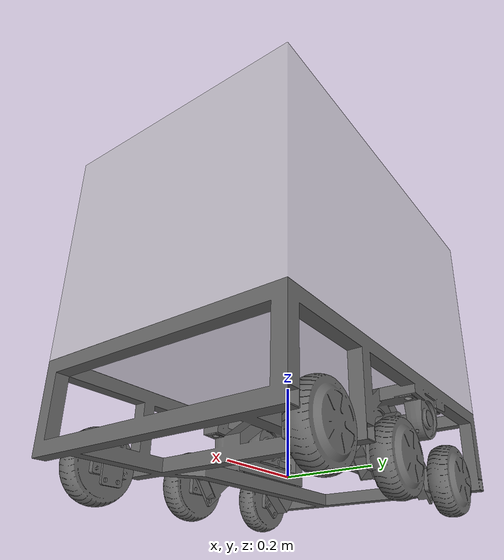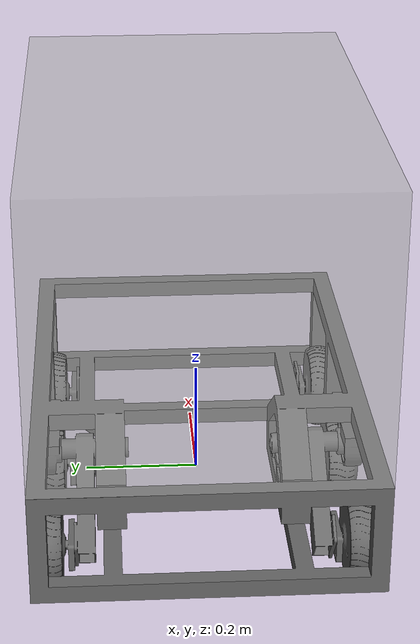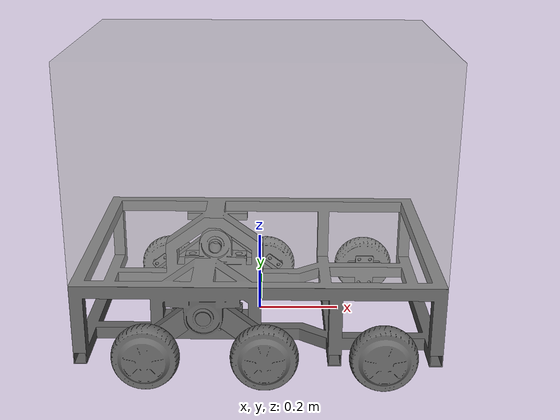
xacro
<?xml version="1.0"?>
<robot name="delivery_robot" xmlns:xacro="http://ros.org/wiki/xacro">

  <!-- Właściwości -->
  <xacro:property name="body_length" value="0.84"/>
  <xacro:property name="body_width" value="0.58"/>
  <xacro:property name="body_height" value="0.5"/>
  <xacro:property name="rocker_y_offset" value="0.185"/>
  <xacro:property name="rocker_z_offset" value="0.1126"/>
  <xacro:property name="wheel_radius" value="0.08255"/>
  <xacro:property name="wheel_width" value="0.05"/>
  <xacro:property name="wheel_gap" value="0.275"/>
  <xacro:property name="wheel_y_offset" value="0.035"/>
  <xacro:property name="wheel_z_offset" value="-0.1076"/>
  <xacro:property name="wheel_front_y_offset" value="${rocker_y_offset + wheel_y_offset}"/>
  <xacro:property name="wheel_front_z_offset" value="${rocker_z_offset + wheel_z_offset}"/>
  <xacro:property name="pkg_path" value="$(find boxygo)"/>

  <!-- Materiały -->
  <material name="black"><color rgba="0 0 0 1"/></material>
  <material name="white"><color rgba="0.7 0.7 0.7 0.5"/></material>
  <material name="grey"><color rgba="0.4 0.4 0.4 1"/></material>

  <!-- Rama -->
  <link name="base_link">
    <visual>
      <geometry>
        <mesh filename="file://${pkg_path}/meshes/frame.stl" scale="0.001 0.001 0.001"/>
      </geometry>
      <material name="grey"/>
    </visual>
    <collision>
      <geometry>
        <mesh filename="file://${pkg_path}/meshes/frame.stl" scale="0.001 0.001 0.001"/>
      </geometry>
    </collision>
    <inertial>
      <mass value="23.95"/>
      <origin xyz="-0.043307 0.002049 0.099983" rpy="0 0 0"/>
      <inertia ixx="1.144" iyy="1.461" izz="2.401" ixy="0.003886" ixz="0.04347" iyz="0.00184"/>
    </inertial>
  </link>

  <!-- Korpus -->
  <link name="body_link">
    <visual>
      <geometry>
        <box size="${body_length} ${body_width} ${body_height}"/>
      </geometry>
      <material name="white"/>
    </visual>
    <collision>
      <geometry>
        <box size="${body_length} ${body_width} ${body_height}"/>
      </geometry>
    </collision>
    <inertial>
      <mass value="10"/>
      <origin xyz="0.42 0.29 0.25" rpy="0 0 0"/>
      <inertia ixx="0.796" iyy="0.869" izz="0.488" ixy="0" ixz="0" iyz="0"/>
    </inertial>
  </link>

  <joint name="body_link_joint" type="fixed">
    <parent link="base_link"/>
    <child link="body_link"/>
    <origin xyz="0 0 ${body_height/2 + 0.195}" rpy="0 0 0"/>
  </joint>

  <!-- Belki -->
  <link name="right_rocker_beam">
    <visual>
      <geometry>
        <mesh filename="file://${pkg_path}/meshes/bogie_arm.stl" scale="0.001 0.001 0.001"/>
      </geometry>
      <origin xyz="0 0 0" rpy="0 0 ${-math.pi/2}"/>
      <material name="grey"/>
    </visual>
    <collision>
      <geometry>
        <mesh filename="file://${pkg_path}/meshes/bogie_arm.stl" scale="0.001 0.001 0.001"/>
      </geometry>
      <origin xyz="0 0 0" rpy="0 0 ${-math.pi/2}"/>
    </collision>
    <inertial>
      <mass value="1.47"/>
      <origin xyz="0.020269 0.000002 -0.062768" rpy="0 0 0"/>
      <inertia ixx="0.01738" iyy="0.003959" izz="0.01506" ixy="0.000087" ixz="0.0001250" iyz="-0.000308"/>
    </inertial>
  </link>

  <joint name="right_rocker_beam_joint" type="revolute">
    <parent link="base_link"/>
    <child link="right_rocker_beam"/>
    <origin xyz="${-wheel_gap/2+0.015} ${-rocker_y_offset} ${rocker_z_offset}" rpy="0 0 0"/>
    <axis xyz="0 1 0"/>
    <limit lower="${-math.pi/8}" upper="${math.pi/8}" effort="10.0" velocity="10.0"/>
    <dynamics damping="0.01" friction="0.001"/>
  </joint>

  <link name="left_rocker_beam">
    <visual>
      <geometry>
        <mesh filename="file://${pkg_path}/meshes/bogie_arm.stl" scale="0.001 0.001 0.001"/>
      </geometry>
      <origin xyz="0 0 0" rpy="0 0 ${math.pi/2}"/>
      <material name="grey"/>
    </visual>
    <collision>
      <geometry>
        <mesh filename="file://${pkg_path}/meshes/bogie_arm.stl" scale="0.001 0.001 0.001"/>
      </geometry>
      <origin xyz="0 0 0" rpy="0 0 ${math.pi/2}"/>
    </collision>
    <inertial>
      <mass value="1.47"/>
      <origin xyz="0.020269 0.000002 -0.062768" rpy="0 0 0"/>
      <inertia ixx="0.01738" iyy="0.003959" izz="0.01506" ixy="0.000087" ixz="0.0001250" iyz="-0.000308"/>
    </inertial>
  </link>

  <joint name="left_rocker_beam_joint" type="revolute">
    <parent link="base_link"/>
    <child link="left_rocker_beam"/>
    <origin xyz="${-wheel_gap/2+0.015} ${rocker_y_offset} ${rocker_z_offset}" rpy="0 0 0"/>
    <axis xyz="0 1 0"/>
    <limit lower="${-math.pi/8}" upper="${math.pi/8}" effort="10.0" velocity="10.0"/>
    <dynamics damping="0.01" friction="0.001"/>
  </joint>

  <!-- Makro koła -->
  <xacro:macro name="wheel" params="side parent_link wheel_side_sign index x_offset y_offset z_offset">
    <link name="${side}_wheel_${index}">
      <visual>
        <geometry>
          <mesh filename="file://${pkg_path}/meshes/hoverboard_wheel.stl" scale="0.001 0.001 0.001"/>
        </geometry>
        <origin xyz="0 0 0" rpy="0 0 ${wheel_side_sign * math.pi/2}"/>
        <material name="grey"/>
      </visual>
      <collision>
        <geometry>
          <mesh filename="file://${pkg_path}/meshes/hoverboard_wheel.stl" scale="0.001 0.001 0.001"/>
        </geometry>
        <origin xyz="0 0 0" rpy="0 0 ${wheel_side_sign * math.pi/2}"/>
      </collision>
      <inertial>
        <mass value="3.225"/>
        <origin xyz="0.043707 0.000011 0.000006" rpy="0 0 0"/>
        <inertia ixx="0.008799" iyy="0.005756" izz="0.005898" ixy="-0.000022" ixz="-0.0000043" iyz="0.000025"/>
      </inertial>
    </link>
    <gazebo reference="${side}_wheel_${index}">
      <mu1>1.0</mu1>
      <mu2>1.0</mu2>
      <kp>100000.0</kp>
      <kd>50.0</kd>
      <minDepth>0.001</minDepth>
      <maxVel>0.1</maxVel>
    </gazebo>
    <joint name="${side}_wheel_${index}_joint" type="continuous">
      <parent link="${parent_link}"/>
      <child link="${side}_wheel_${index}"/>
      <origin xyz="${x_offset} ${y_offset} ${z_offset}" rpy="0 0 0"/>
      <axis xyz="0 1 0"/>
      <limit effort="10.0" velocity="10.0"/>
      <dynamics damping="0.01" friction="0.001"/>
    </joint>
    <transmission name="${side}_wheel_${index}_trans">
      <type>transmission_interface/SimpleTransmission</type>
      <joint name="${side}_wheel_${index}_joint">
        <hardwareInterface>hardware_interface/VelocityJointInterface</hardwareInterface>
      </joint>
      <actuator name="${side}_wheel_${index}_motor">
        <hardwareInterface>hardware_interface/VelocityJointInterface</hardwareInterface>
        <mechanicalReduction>1</mechanicalReduction>
      </actuator>
    </transmission>
  </xacro:macro>

  <!-- Koła -->
  <xacro:wheel side="left" parent_link="base_link" wheel_side_sign="1" index="1" x_offset="${wheel_gap+0.015}" y_offset="${wheel_front_y_offset}" z_offset="${wheel_front_z_offset}"/>
  <xacro:wheel side="left" parent_link="left_rocker_beam" wheel_side_sign="1" index="2" x_offset="${wheel_gap/2}" y_offset="${wheel_y_offset}" z_offset="${wheel_z_offset}"/>
  <xacro:wheel side="left" parent_link="left_rocker_beam" wheel_side_sign="1" index="3" x_offset="${-wheel_gap/2}" y_offset="${wheel_y_offset}" z_offset="${wheel_z_offset}"/>
  <xacro:wheel side="right" parent_link="base_link" wheel_side_sign="-1" index="1" x_offset="${wheel_gap+0.015}" y_offset="${-wheel_front_y_offset}" z_offset="${wheel_front_z_offset}"/>
  <xacro:wheel side="right" parent_link="right_rocker_beam" wheel_side_sign="-1" index="2" x_offset="${wheel_gap/2}" y_offset="${-wheel_y_offset}" z_offset="${wheel_z_offset}"/>
  <xacro:wheel side="right" parent_link="right_rocker_beam" wheel_side_sign="-1" index="3" x_offset="${-wheel_gap/2}" y_offset="${-wheel_y_offset}" z_offset="${wheel_z_offset}"/>

  <!-- Gazebo - kolor -->
  <gazebo reference="left_wheel_1">
    <material>Gazebo/Grey</material>
  </gazebo>
  <gazebo reference="left_wheel_2">
    <material>Gazebo/Grey</material>
  </gazebo>
  <gazebo reference="left_wheel_3">
    <material>Gazebo/Grey</material>
  </gazebo>
  <gazebo reference="right_wheel_1">
    <material>Gazebo/Grey</material>
  </gazebo>
  <gazebo reference="right_wheel_2">
    <material>Gazebo/Grey</material>
  </gazebo>
  <gazebo reference="right_wheel_3">
    <material>Gazebo/Grey</material>
  </gazebo>
  <gazebo reference="left_rocker_beam">
    <material>Gazebo/Grey</material>
  </gazebo>
  <gazebo reference="right_rocker_beam">
    <material>Gazebo/Grey</material>
  </gazebo>
  <gazebo reference="base_link">
    <material>Gazebo/Grey</material>
  </gazebo>

  <!-- Plugin ros2_control -->
  <gazebo>
    <plugin name="gazebo_ros2_control" filename="libgazebo_ros2_control.so">
      <update_rate>60</update_rate>
      <parameters>${pkg_path}/config/diff_drive_controller.yaml</parameters>
    </plugin>
  </gazebo>

  <!-- ros2_control hardware -->
  <ros2_control name="BoxyGoSystem" type="system">
    <hardware>
      <plugin>gazebo_ros2_control/GazeboSystem</plugin>
    </hardware>
    <joint name="left_wheel_1_joint">
      <command_interface name="velocity"/>
      <state_interface name="position"/>
      <state_interface name="velocity"/>
    </joint>
    <joint name="left_wheel_2_joint">
      <command_interface name="velocity"/>
      <state_interface name="position"/>
      <state_interface name="velocity"/>
    </joint>
    <joint name="left_wheel_3_joint">
      <command_interface name="velocity"/>
      <state_interface name="position"/>
      <state_interface name="velocity"/>
    </joint>
    <joint name="right_wheel_1_joint">
      <command_interface name="velocity"/>
      <state_interface name="position"/>
      <state_interface name="velocity"/>
    </joint>
    <joint name="right_wheel_2_joint">
      <command_interface name="velocity"/>
      <state_interface name="position"/>
      <state_interface name="velocity"/>
    </joint>
    <joint name="right_wheel_3_joint">
      <command_interface name="velocity"/>
      <state_interface name="position"/>
      <state_interface name="velocity"/>
    </joint>

    <joint name="left_rocker_beam_joint">
      <command_interface name="position"/>
      <state_interface name="position"/>
      <state_interface name="velocity"/>
    </joint>
    <joint name="right_rocker_beam_joint">
      <command_interface name="position"/>
      <state_interface name="position"/>
      <state_interface name="velocity"/>
    </joint>
  </ros2_control>

</robot>
